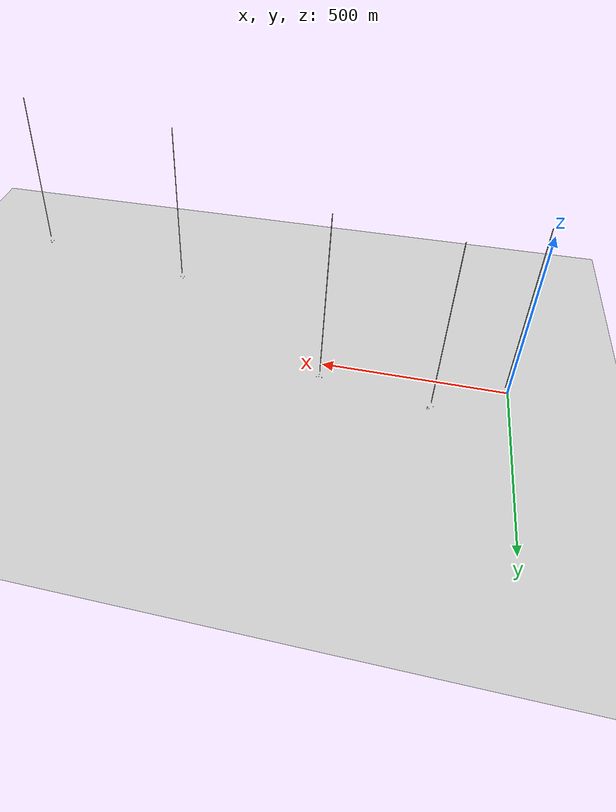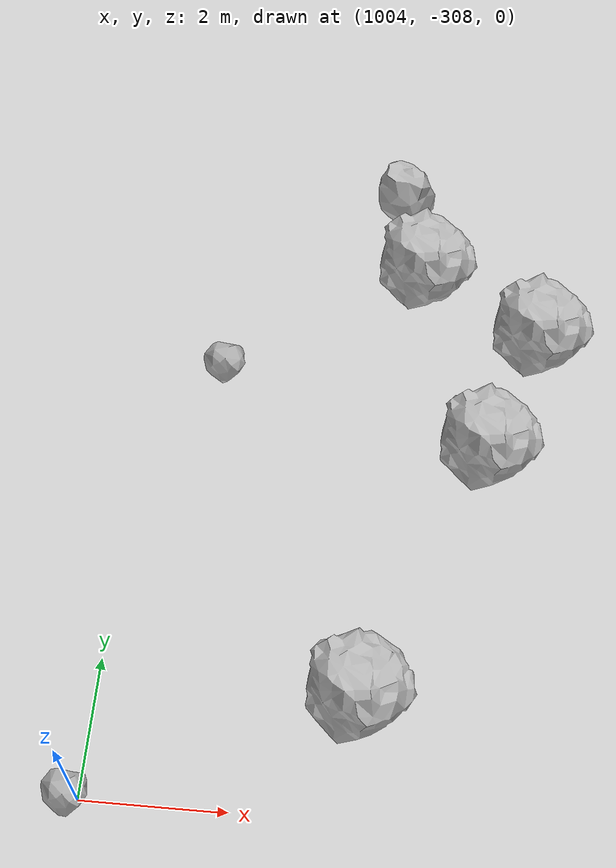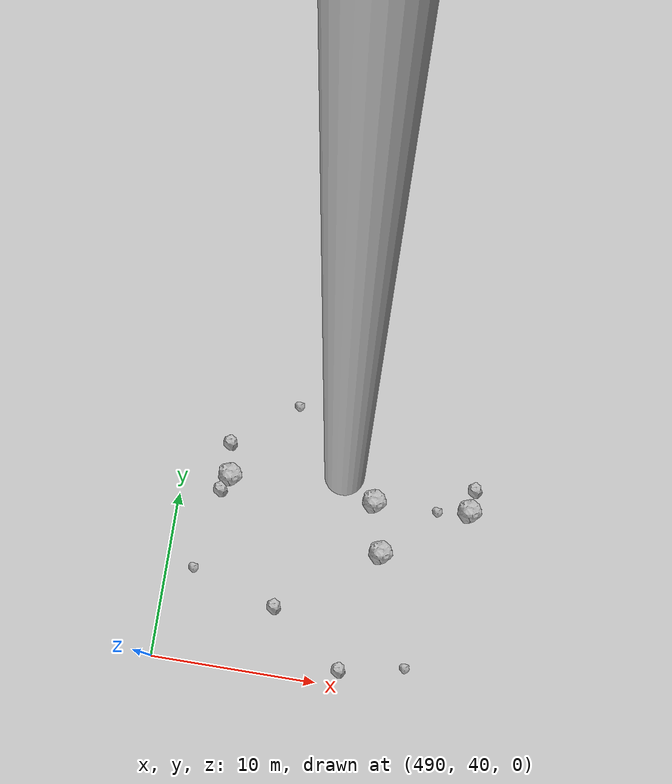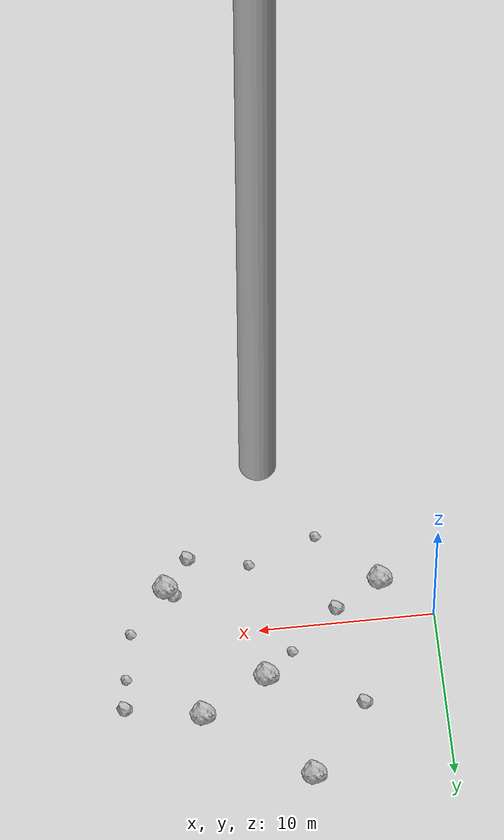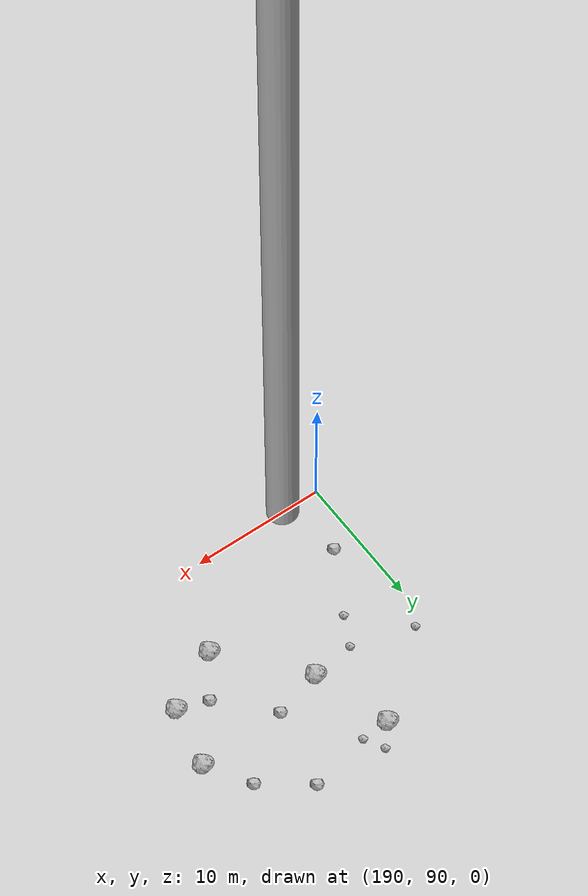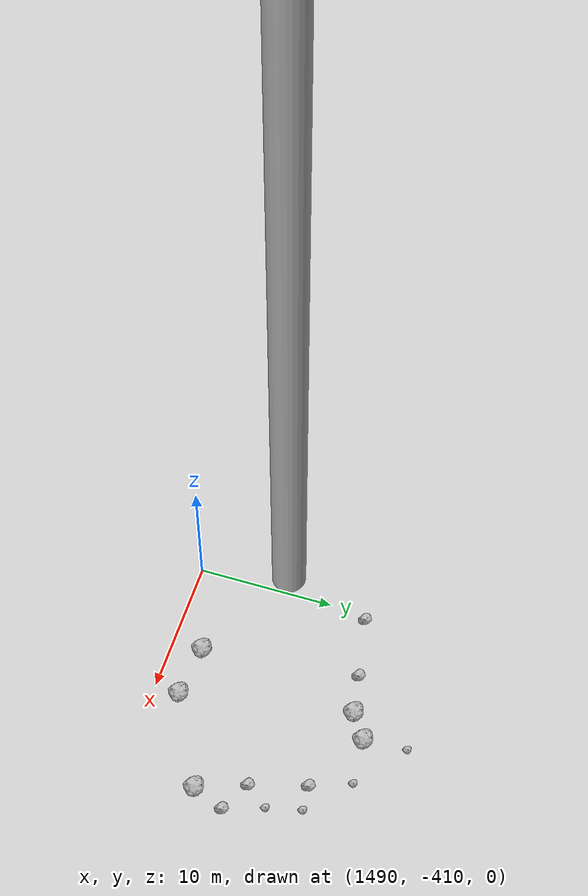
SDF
<?xml version="1.0" ?>
<sdf version="1.6">
  <world name="default">

    <include>
      <uri>model://custom_ground</uri>
    </include>

    <include>
      <uri>model://sun</uri>
    </include>

    <spherical_coordinates>
      <surface_model>EARTH_WGS84</surface_model>
      <latitude_deg>38.161479</latitude_deg>
      <longitude_deg>-122.454630</longitude_deg>
      <elevation>488.0</elevation>
      <heading_deg>90</heading_deg>
    </spherical_coordinates>

    <model name="rock1_0_0">
      <include>
        <uri>model://rock1</uri>
        <pose>15.02032805998395 -3.0324732270836847 0.5 0 0 0</pose>
      </include>
    </model>
    <model name="rock1_0_1">
      <include>
        <uri>model://rock1</uri>
        <pose>2.8353848959086614 -2.4117521823976906 0.5 0 0 0</pose>
      </include>
    </model>
    <model name="rock1_0_2">
      <include>
        <uri>model://rock1</uri>
        <pose>7.844885169939335 9.369949308309838 0.5 0 0 0</pose>
      </include>
    </model>
    <model name="rock1_0_3">
      <include>
        <uri>model://rock1</uri>
        <pose>13.671666655693798 5.085502060578101 0.5 0 0 0</pose>
      </include>
    </model>
    <model name="rock1_0_4">
      <include>
        <uri>model://rock1</uri>
        <pose>9.870673440204694 3.016768281391233 0.5 0 0 0</pose>
      </include>
    </model>
    <model name="rock2_0_0">
      <include>
        <uri>model://rock2</uri>
        <pose>13.587441622151138 -4.8644890569308235 0.3 0 0 0</pose>
      </include>
    </model>
    <model name="rock2_0_1">
      <include>
        <uri>model://rock2</uri>
        <pose>5.488662708712619 -0.8698328988524313 0.3 0 0 0</pose>
      </include>
    </model>
    <model name="rock2_0_2">
      <include>
        <uri>model://rock2</uri>
        <pose>18.00731328948004 4.2299822469847115 0.3 0 0 0</pose>
      </include>
    </model>
    <model name="rock2_0_3">
      <include>
        <uri>model://rock2</uri>
        <pose>14.579648390960074 -2.648199944608189 0.3 0 0 0</pose>
      </include>
    </model>
    <model name="rock2_0_4">
      <include>
        <uri>model://rock2</uri>
        <pose>4.5318191877268665 5.168037570294322 0.3 0 0 0</pose>
      </include>
    </model>
    <model name="rock3_0_0">
      <include>
        <uri>model://rock3</uri>
        <pose>10.11497488615878 -4.166276833029019 0.2 0 0 0</pose>
      </include>
    </model>
    <model name="rock3_0_1">
      <include>
        <uri>model://rock3</uri>
        <pose>6.176885820438565 -5.590683888284264 0.2 0 0 0</pose>
      </include>
    </model>
    <model name="rock3_0_2">
      <include>
        <uri>model://rock3</uri>
        <pose>17.21719821477167 -0.4648991382843093 0.2 0 0 0</pose>
      </include>
    </model>
    <model name="rock3_0_3">
      <include>
        <uri>model://rock3</uri>
        <pose>17.724194626085772 2.358539810626599 0.2 0 0 0</pose>
      </include>
    </model>
    <model name="rock3_0_4">
      <include>
        <uri>model://rock3</uri>
        <pose>8.224745640308955 1.5426470478307834 0.2 0 0 0</pose>
      </include>
    </model>
    <model name="rock1_1_0">
      <include>
        <uri>model://rock1</uri>
        <pose>207.81432545597374 98.5182801421714 0.5 0 0 0</pose>
      </include>
    </model>
    <model name="rock1_1_1">
      <include>
        <uri>model://rock1</uri>
        <pose>208.6927189815758 102.8996680865174 0.5 0 0 0</pose>
      </include>
    </model>
    <model name="rock1_1_2">
      <include>
        <uri>model://rock1</uri>
        <pose>196.95494109054817 107.47140953487441 0.5 0 0 0</pose>
      </include>
    </model>
    <model name="rock1_1_3">
      <include>
        <uri>model://rock1</uri>
        <pose>198.76032342021833 101.84783268154445 0.5 0 0 0</pose>
      </include>
    </model>
    <model name="rock1_1_4">
      <include>
        <uri>model://rock1</uri>
        <pose>203.54278031031836 96.22850158815068 0.5 0 0 0</pose>
      </include>
    </model>
    <model name="rock2_1_0">
      <include>
        <uri>model://rock2</uri>
        <pose>202.26278537356922 102.73185031822 0.3 0 0 0</pose>
      </include>
    </model>
    <model name="rock2_1_1">
      <include>
        <uri>model://rock2</uri>
        <pose>203.40335683067053 108.43467328131999 0.3 0 0 0</pose>
      </include>
    </model>
    <model name="rock2_1_2">
      <include>
        <uri>model://rock2</uri>
        <pose>205.56526600851157 99.22575269890564 0.3 0 0 0</pose>
      </include>
    </model>
    <model name="rock2_1_3">
      <include>
        <uri>model://rock2</uri>
        <pose>206.73248017750183 105.95637206536504 0.3 0 0 0</pose>
      </include>
    </model>
    <model name="rock2_1_4">
      <include>
        <uri>model://rock2</uri>
        <pose>191.85371211825446 94.60330044413305 0.3 0 0 0</pose>
      </include>
    </model>
    <model name="rock3_1_0">
      <include>
        <uri>model://rock3</uri>
        <pose>194.39175455031756 99.1663932070732 0.2 0 0 0</pose>
      </include>
    </model>
    <model name="rock3_1_1">
      <include>
        <uri>model://rock3</uri>
        <pose>198.93825882868003 107.47791438486898 0.2 0 0 0</pose>
      </include>
    </model>
    <model name="rock3_1_2">
      <include>
        <uri>model://rock3</uri>
        <pose>190.94582337153648 102.71483130597103 0.2 0 0 0</pose>
      </include>
    </model>
    <model name="rock3_1_3">
      <include>
        <uri>model://rock3</uri>
        <pose>198.14534761433944 108.88092066575528 0.2 0 0 0</pose>
      </include>
    </model>
    <model name="rock3_1_4">
      <include>
        <uri>model://rock3</uri>
        <pose>195.47650126143517 101.35796583681095 0.2 0 0 0</pose>
      </include>
    </model>
    <model name="rock1_2_0">
      <include>
        <uri>model://rock1</uri>
        <pose>499.1094696399335 56.50759064504923 0.5 0 0 0</pose>
      </include>
    </model>
    <model name="rock1_2_1">
      <include>
        <uri>model://rock1</uri>
        <pose>492.87598328191376 51.589704706204714 0.5 0 0 0</pose>
      </include>
    </model>
    <model name="rock1_2_2">
      <include>
        <uri>model://rock1</uri>
        <pose>502.6781229547969 48.35934845806616 0.5 0 0 0</pose>
      </include>
    </model>
    <model name="rock1_2_3">
      <include>
        <uri>model://rock1</uri>
        <pose>507.6246109797515 51.71319721010093 0.5 0 0 0</pose>
      </include>
    </model>
    <model name="rock1_2_4">
      <include>
        <uri>model://rock1</uri>
        <pose>501.81072355877444 51.38841531175074 0.5 0 0 0</pose>
      </include>
    </model>
    <model name="rock2_2_0">
      <include>
        <uri>model://rock2</uri>
        <pose>507.7600457903058 53.06743283605067 0.3 0 0 0</pose>
      </include>
    </model>
    <model name="rock2_2_1">
      <include>
        <uri>model://rock2</uri>
        <pose>496.8170576705385 44.115428291084996 0.3 0 0 0</pose>
      </include>
    </model>
    <model name="rock2_2_2">
      <include>
        <uri>model://rock2</uri>
        <pose>501.273350584564 40.9786922717903 0.3 0 0 0</pose>
      </include>
    </model>
    <model name="rock2_2_3">
      <include>
        <uri>model://rock2</uri>
        <pose>492.43071126804205 50.652884208243464 0.3 0 0 0</pose>
      </include>
    </model>
    <model name="rock2_2_4">
      <include>
        <uri>model://rock2</uri>
        <pose>492.55270533410123 53.574707946168836 0.3 0 0 0</pose>
      </include>
    </model>
    <model name="rock3_2_0">
      <include>
        <uri>model://rock3</uri>
        <pose>496.34245002848616 56.47312496090807 0.2 0 0 0</pose>
      </include>
    </model>
    <model name="rock3_2_1">
      <include>
        <uri>model://rock3</uri>
        <pose>491.5962536289933 45.65550345681365 0.2 0 0 0</pose>
      </include>
    </model>
    <model name="rock3_2_2">
      <include>
        <uri>model://rock3</uri>
        <pose>505.16018216845583 41.699391308362024 0.2 0 0 0</pose>
      </include>
    </model>
    <model name="rock3_2_3">
      <include>
        <uri>model://rock3</uri>
        <pose>499.10837194643864 59.44990442942735 0.2 0 0 0</pose>
      </include>
    </model>
    <model name="rock3_2_4">
      <include>
        <uri>model://rock3</uri>
        <pose>505.6760488799252 51.37955502886282 0.2 0 0 0</pose>
      </include>
    </model>
    <model name="rock1_3_0">
      <include>
        <uri>model://rock1</uri>
        <pose>1009.8194445022913 -300.3617694329968 0.5 0 0 0</pose>
      </include>
    </model>
    <model name="rock1_3_1">
      <include>
        <uri>model://rock1</uri>
        <pose>1009.147880670641 -302.3419405252159 0.5 0 0 0</pose>
      </include>
    </model>
    <model name="rock1_3_2">
      <include>
        <uri>model://rock1</uri>
        <pose>1008.024192870595 -299.30603570189004 0.5 0 0 0</pose>
      </include>
    </model>
    <model name="rock1_3_3">
      <include>
        <uri>model://rock1</uri>
        <pose>994.7690204787449 -307.8993595257076 0.5 0 0 0</pose>
      </include>
    </model>
    <model name="rock1_3_4">
      <include>
        <uri>model://rock1</uri>
        <pose>1007.5972552061721 -306.277533032365 0.5 0 0 0</pose>
      </include>
    </model>
    <model name="rock2_3_0">
      <include>
        <uri>model://rock2</uri>
        <pose>994.8830792269089 -305.8798218953337 0.3 0 0 0</pose>
      </include>
    </model>
    <model name="rock2_3_1">
      <include>
        <uri>model://rock2</uri>
        <pose>1007.6378805717587 -306.17593009540326 0.3 0 0 0</pose>
      </include>
    </model>
    <model name="rock2_3_2">
      <include>
        <uri>model://rock2</uri>
        <pose>996.6487485184246 -298.4635717217497 0.3 0 0 0</pose>
      </include>
    </model>
    <model name="rock2_3_3">
      <include>
        <uri>model://rock2</uri>
        <pose>997.4776637235666 -296.0937480229848 0.3 0 0 0</pose>
      </include>
    </model>
    <model name="rock2_3_4">
      <include>
        <uri>model://rock2</uri>
        <pose>1007.5880315919488 -297.836626603907 0.3 0 0 0</pose>
      </include>
    </model>
    <model name="rock3_3_0">
      <include>
        <uri>model://rock3</uri>
        <pose>996.0350828852709 -308.71253528909074 0.2 0 0 0</pose>
      </include>
    </model>
    <model name="rock3_3_1">
      <include>
        <uri>model://rock3</uri>
        <pose>1005.0868011550554 -301.18462339473035 0.2 0 0 0</pose>
      </include>
    </model>
    <model name="rock3_3_2">
      <include>
        <uri>model://rock3</uri>
        <pose>994.4149193436393 -305.5811489034847 0.2 0 0 0</pose>
      </include>
    </model>
    <model name="rock3_3_3">
      <include>
        <uri>model://rock3</uri>
        <pose>997.1336835691761 -302.2975275984922 0.2 0 0 0</pose>
      </include>
    </model>
    <model name="rock3_3_4">
      <include>
        <uri>model://rock3</uri>
        <pose>1003.8291939129754 -307.96084506583816 0.2 0 0 0</pose>
      </include>
    </model>
    <model name="rock1_4_0">
      <include>
        <uri>model://rock1</uri>
        <pose>1500.3153632663332 -408.18167316219467 0.5 0 0 0</pose>
      </include>
    </model>
    <model name="rock1_4_1">
      <include>
        <uri>model://rock1</uri>
        <pose>1498.025596635868 -395.9361446948723 0.5 0 0 0</pose>
      </include>
    </model>
    <model name="rock1_4_2">
      <include>
        <uri>model://rock1</uri>
        <pose>1506.7416946122414 -404.74516281710277 0.5 0 0 0</pose>
      </include>
    </model>
    <model name="rock1_4_3">
      <include>
        <uri>model://rock1</uri>
        <pose>1499.8449736148357 -394.72534775398464 0.5 0 0 0</pose>
      </include>
    </model>
    <model name="rock1_4_4">
      <include>
        <uri>model://rock1</uri>
        <pose>1496.497252970725 -407.78675278250773 0.5 0 0 0</pose>
      </include>
    </model>
    <model name="rock2_4_0">
      <include>
        <uri>model://rock2</uri>
        <pose>1505.3532343924394 -401.2877969991249 0.3 0 0 0</pose>
      </include>
    </model>
    <model name="rock2_4_1">
      <include>
        <uri>model://rock2</uri>
        <pose>1507.534481744217 -402.4370971890793 0.3 0 0 0</pose>
      </include>
    </model>
    <model name="rock2_4_2">
      <include>
        <uri>model://rock2</uri>
        <pose>1504.175882085513 -397.2968544638845 0.3 0 0 0</pose>
      </include>
    </model>
    <model name="rock2_4_3">
      <include>
        <uri>model://rock2</uri>
        <pose>1490.4875584106187 -397.25087757429867 0.3 0 0 0</pose>
      </include>
    </model>
    <model name="rock2_4_4">
      <include>
        <uri>model://rock2</uri>
        <pose>1495.0255396106988 -396.4007077554003 0.3 0 0 0</pose>
      </include>
    </model>
    <model name="rock3_4_0">
      <include>
        <uri>model://rock3</uri>
        <pose>1505.960489454713 -397.19784360894283 0.2 0 0 0</pose>
      </include>
    </model>
    <model name="rock3_4_1">
      <include>
        <uri>model://rock3</uri>
        <pose>1496.2248046103507 -407.4382266970876 0.2 0 0 0</pose>
      </include>
    </model>
    <model name="rock3_4_2">
      <include>
        <uri>model://rock3</uri>
        <pose>1499.5048586844182 -391.60940364276945 0.2 0 0 0</pose>
      </include>
    </model>
    <model name="rock3_4_3">
      <include>
        <uri>model://rock3</uri>
        <pose>1503.0563082407768 -394.48038705884903 0.2 0 0 0</pose>
      </include>
    </model>
    <model name="rock3_4_4">
      <include>
        <uri>model://rock3</uri>
        <pose>1506.571964504403 -399.68068032562275 0.2 0 0 0</pose>
      </include>
    </model>

    <model name="cylinder_1">
      <static>true</static>
      <link name="link">
        <visual name="visual">
          <geometry>
            <cylinder>
              <radius>1</radius>
              <length>500</length>
            </cylinder>
          </geometry>
        </visual>
      </link>
      <pose>10 0 270 0 0 0</pose>
    </model>

    <model name="cylinder_2">
      <static>true</static>
      <link name="link">
        <visual name="visual">
          <geometry>
            <cylinder>
              <radius>1</radius>
              <length>500</length>
            </cylinder>
          </geometry>
        </visual>
      </link>
      <pose>200 100 270 0 0 0</pose>
    </model>

    <model name="cylinder_3">
      <static>true</static>
      <link name="link">
        <visual name="visual">
          <geometry>
            <cylinder>
              <radius>1</radius>
              <length>500</length>
            </cylinder>
          </geometry>
        </visual>
      </link>
      <pose>500 50 270 0 0 0</pose>
    </model>

    <model name="cylinder_4">
      <static>true</static>
      <link name="link">
        <visual name="visual">
          <geometry>
            <cylinder>
              <radius>1</radius>
              <length>500</length>
            </cylinder>
          </geometry>
        </visual>
      </link>
      <pose>1000 -300 270 0 0 0</pose>
    </model>

    <model name="cylinder_5">
      <static>true</static>
      <link name="link">
        <visual name="visual">
          <geometry>
            <cylinder>
              <radius>1</radius>
              <length>500</length>
            </cylinder>
          </geometry>
        </visual>
      </link>
      <pose>1500 -400 270 0 0 0</pose>
    </model>

  </world>
</sdf>

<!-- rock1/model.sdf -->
<sdf version="1.6">
  <model name="rock1">
    <static>true</static> <!-- Set to true if the model should not move -->
    <pose>0 0 0 0 0 0</pose>

    <!--z offset is 0.5 for full scale-->

    <link name="link">
      <collision name="rock1_collision">
        <geometry>
          <mesh>
            <uri>model://meshes/rock1.dae</uri>
          </mesh>
        </geometry>
      </collision>
      <visual name="rock1_visual">
        <geometry>
          <mesh>
            <uri>model://meshes/rock1.dae</uri>
          </mesh>
        </geometry>
        <material>
          <script>
            <uri>model://materials/scripts/sand_pebbles.material</uri>
            <name>custom_ground/Image</name>
          </script>
        </material>
      </visual>
    </link>
  </model>
</sdf>

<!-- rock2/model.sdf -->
<sdf version="1.6">
  <model name="rock2">
    <static>true</static> <!-- Set to true if the model should not move -->
    <pose>0 0 0 0 0 0</pose>

    <!--z offset is 0.3 for full scale-->

    <link name="link">
      <collision name="rock2_collision">
        <geometry>
          <mesh>
            <uri>model://meshes/rock2.dae</uri>
          </mesh>
        </geometry>
      </collision>
      <visual name="rock2_visual">
        <geometry>
          <mesh>
            <uri>model://meshes/rock2.dae</uri>
          </mesh>
        </geometry>
        <material>
          <script>
            <uri>model://materials/scripts/sand_pebbles.material</uri>
            <name>custom_ground/Image</name>
          </script>
        </material>
      </visual>
    </link>
  </model>
</sdf>

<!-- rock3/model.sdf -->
<sdf version="1.6">
  <model name="rock3">
    <static>true</static> <!-- Set to true if the model should not move -->
    <pose>0 0 0 0 0 0</pose>

    <!--z offset is 0.2 for full scale-->

    <link name="link">
      <collision name="rock3_collision">
        <geometry>
          <mesh>
            <uri>model://meshes/rock3.dae</uri>
          </mesh>
        </geometry>
      </collision>
      <visual name="rock3_visual">
        <geometry>
          <mesh>
            <uri>model://meshes/rock3.dae</uri>
          </mesh>
        </geometry>
        <material>
          <script>
            <uri>model://materials/scripts/sand_pebbles.material</uri>
            <name>custom_ground/Image</name>
          </script>
        </material>
      </visual>
    </link>
  </model>
</sdf>

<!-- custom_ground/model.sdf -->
<sdf version="1.6">
  <model name="custom_ground">
    <static>true</static> <!-- Ground is static and immovable -->
    <link name="ground_link">
      <pose>240 0 0 0 0 0</pose> <!-- Position and orientation relative to the world -->
      <!-- Visual Representation -->
      <visual name="ground_visual">
        <geometry>
          <plane>
            <normal>0 0 1</normal> <!-- Upward facing plane -->
            <size>500 500</size> <!-- Size of the plane -->
          </plane>
        </geometry>
        <material>
          <script>
            <uri>model://materials/scripts/sand_pebbles.material</uri>
            <name>custom_ground/Image</name>
          </script>
        </material>
      </visual>

      <!-- Collision Representation -->
      <collision name="ground_collision">
        <geometry>
          <plane>
            <normal>0 0 1</normal>
            <size>100 100</size>
          </plane>
        </geometry>
      </collision>

    </link>
  </model>
</sdf>
